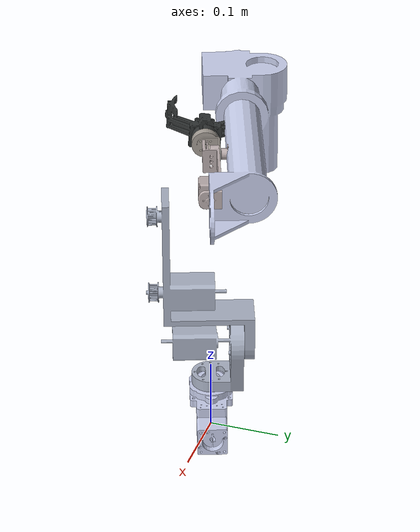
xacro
<?xml version="1.0"?>
<robot xmlns:xacro="http://www.ros.org/wiki/xacro" name="arm_description">

    <!--指定urdf位置 -->
    <xacro:include filename="$(find arm_description)/urdf/arm_description.urdf" />

    <!--对link进行gazebo的属性设置 -->
    <gazebo reference="link1">
        <material>Gazebo/Purple</material>
        <self_collide>false</self_collide>
        <gravity>false</gravity>
    </gazebo>
    <gazebo reference="link2">
        <material>Gazebo/Red</material>
        <gravity>false</gravity>
    </gazebo>
    <gazebo reference="link3">
        <material>Gazebo/Blue</material>
        <gravity>false</gravity>
    </gazebo>
    <gazebo reference="link4">
        <material>Gazebo/Green</material>
        <gravity>false</gravity>
    </gazebo>
    <gazebo reference="link5">
        <material>Gazebo/Yellow</material>
        <gravity>false</gravity>
    </gazebo>
    <gazebo reference="link6">
        <material>Gazebo/Orange</material>
        <gravity>false</gravity>
    </gazebo>

    <!--声明ros2_control-->
    <ros2_control name="GazeboSystem" type="system">
        <hardware>
            <plugin>gazebo_ros2_control/GazeboSystem</plugin>
        </hardware>
        <joint name="joint1">
            <command_interface name="position"/>
            <state_interface name="position">
                <param name="initial_value">0</param>
            </state_interface>
            <state_interface name="velocity"/>
        </joint>
        <joint name="joint2">
            <command_interface name="position"/>
            <state_interface name="position">
                <param name="initial_value">0</param>
            </state_interface>
            <state_interface name="velocity"/>
        </joint>
        <joint name="joint3">
            <command_interface name="position"/>
            <state_interface name="position">
                <param name="initial_value">0</param>
            </state_interface>
            <state_interface name="velocity"/>
        </joint>
        <joint name="joint4">
            <command_interface name="position"/>
            <state_interface name="position">
                <param name="initial_value">0</param>
            </state_interface>
            <state_interface name="velocity"/>
        </joint>
        <joint name="joint5">
            <command_interface name="position"/>
            <state_interface name="position">
                <param name="initial_value">0</param>
            </state_interface>
            <state_interface name="velocity"/>
        </joint>
        <joint name="joint6">
            <command_interface name="position"/>
            <state_interface name="position">
                <param name="initial_value">0</param>
            </state_interface>
            <state_interface name="velocity"/>
        </joint>
    </ros2_control>

    <!--加载ros2_control插件-->
    <gazebo>
        <plugin filename="libgazebo_ros2_control.so" name="gazebo_ros2_control">
            <parameters>$(find mybot)/config/ros2_controllers.yaml</parameters>
            <robot_param>robot_description</robot_param>
        </plugin>
    </gazebo>

</robot>

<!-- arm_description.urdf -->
<robot
  name="arm_description">
  <link
    name="base_link">
    <inertial>
      <origin
        xyz="0.0268167569184559 0.00988330927382925 0.0389985816010397"
        rpy="0 0 0" />
      <mass
        value="0.203444722785633" />
      <inertia
        ixx="0"
        ixy="0"
        ixz="0"
        iyy="0"
        iyz="0"
        izz="0" />
    </inertial>
    <visual>
      <origin
        xyz="0 0 0"
        rpy="0 0 0" />
      <geometry>
        <mesh filename="file://$(find arm_description)/meshes/base_link.STL" />
      </geometry>
      <material
        name="">
        <color
          rgba="0.792156862745098 0.819607843137255 0.933333333333333 1" />
      </material>
    </visual>
    <collision>
      <origin
        xyz="0 0 0"
        rpy="0 0 0" />
      <geometry>
        <mesh filename="file://$(find arm_description)/meshes/base_link.STL" />
      </geometry>
    </collision>
  </link>
  <link
    name="link1">
    <inertial>
      <origin
        xyz="-0.0051989766284948 0.014105545007175 0.094274975812668"
        rpy="0 0 0" />
      <mass
        value="0.368823355332405" />
      <inertia
        ixx="0"
        ixy="0"
        ixz="0"
        iyy="0"
        iyz="0"
        izz="0"/>
    </inertial>
    <visual>
      <origin
        xyz="0 0 0"
        rpy="0 0 0" />
      <geometry>
        <mesh filename="file://$(find arm_description)/meshes/link1.STL" />
      </geometry>
      <material
        name="">
        <color
          rgba="0.666666666666667 0.698039215686274 0.768627450980392 1" />
      </material>
    </visual>
    <collision>
      <origin
        xyz="0 0 0"
        rpy="0 0 0" />
      <geometry>
        <mesh filename="file://$(find arm_description)/meshes/link1.STL" />
      </geometry>
    </collision>
  </link>
  <joint
    name="joint1"
    type="revolute">
    <origin
      xyz="0 0 0.023"
      rpy="0 0 0" />
    <parent
      link="base_link" />
    <child
      link="link1" />
    <axis
      xyz="0 0 1" />
    <limit
      lower="-3.14"
      upper="3.14"
      effort="100"
      velocity="1" />
  </joint>
  <link
    name="link2">
    <inertial>
      <origin
        xyz="8.83460611810979E-08 -0.128012629710787 -0.0159296257706432"
        rpy="0 0 0" />
      <mass
        value="0.544852989449072" />
      <inertia
        ixx="0"
        ixy="0"
        ixz="0"
        iyy="0"
        iyz="0"
        izz="0" />
    </inertial>
    <visual>
      <origin
        xyz="0 0 0"
        rpy="0 0 0" />
      <geometry>
        <mesh filename="file://$(find arm_description)/meshes/link2.STL" />
      </geometry>
      <material
        name="">
        <color
          rgba="0.666666666666667 0.698039215686274 0.768627450980392 1" />
      </material>
    </visual>
    <collision>
      <origin
        xyz="0 0 0"
        rpy="0 0 0" />
      <geometry>
        <mesh filename="file://$(find arm_description)/meshes/link2.STL" />
      </geometry>
    </collision>
  </link>
  <joint
    name="joint2"
    type="revolute">
    <origin
      xyz="0 0 0.068"
      rpy="-1.5708 0 0.3531" />
    <parent
      link="link1" />
    <child
      link="link2" />
    <axis
      xyz="0 0 1" />
    <limit
      lower="-3.14"
      upper="3.14"
      effort="100"
      velocity="1" />
  </joint>
  <link
    name="link3">
    <inertial>
      <origin
        xyz="0.013240251863205 0.0139335419355381 -0.0112377194070576"
        rpy="0 0 0" />
      <mass
        value="0.0917004665842034" />
      <inertia
        ixx="0"
        ixy="0"
        ixz="0"
        iyy="0"
        iyz="0"
        izz="0" />
    </inertial>
    <visual>
      <origin
        xyz="0 0 0"
        rpy="0 0 0" />
      <geometry>
        <mesh filename="file://$(find arm_description)/meshes/link3.STL" />
      </geometry>
      <material
        name="">
        <color
          rgba="0.792156862745098 0.819607843137255 0.933333333333333 1" />
      </material>
    </visual>
    <collision>
      <origin
        xyz="0 0 0"
        rpy="0 0 0" />
      <geometry>
        <mesh filename="file://$(find arm_description)/meshes/link3.STL" />
      </geometry>
    </collision>
  </link>
  <joint
    name="joint3"
    type="revolute">
    <origin
      xyz="0 -0.2495 0"
      rpy="0 0 -3.1416" />
    <parent
      link="link2" />
    <child
      link="link3" />
    <axis
      xyz="0 0 1" />
    <limit
      lower="-3.14"
      upper="3.14"
      effort="100"
      velocity="1" />
  </joint>
  <link
    name="link4">
    <inertial>
      <origin
        xyz="-5.8714765495238E-05 0.0119880333787913 0.108725593527645"
        rpy="0 0 0" />
      <mass
        value="0.069176396943401" />
      <inertia
        ixx="0"
        ixy="0"
        ixz="0"
        iyy="0"
        iyz="0"
        izz="0" />
    </inertial>
    <visual>
      <origin
        xyz="0 0 0"
        rpy="0 0 0" />
      <geometry>
        <mesh filename="file://$(find arm_description)/meshes/link4.STL" />
      </geometry>
      <material
        name="">
        <color
          rgba="0.729411764705882 0.67843137254902 0.67843137254902 1" />
      </material>
    </visual>
    <collision>
      <origin
        xyz="0 0 0"
        rpy="0 0 0" />
      <geometry>
        <mesh filename="file://$(find arm_description)/meshes/link4.STL" />
      </geometry>
    </collision>
  </link>
  <joint
    name="joint4"
    type="revolute">
    <origin
      xyz="0 0 0"
      rpy="1.5708 0 1.5708" />
    <parent
      link="link3" />
    <child
      link="link4" />
    <axis
      xyz="0 0 -1" />
    <limit
      lower="-3.14"
      upper="3.14"
      effort="100"
      velocity="1" />
  </joint>
  <link
    name="link5">
    <inertial>
      <origin
        xyz="0.0229728172093318 -9.43689570931383E-16 -0.00391893505663949"
        rpy="0 0 0" />
      <mass
        value="0.023149699183495" />
      <inertia
        ixx="0"
        ixy="0"
        ixz="0"
        iyy="0"
        iyz="0"
        izz="0" />
    </inertial>
    <visual>
      <origin
        xyz="0 0 0"
        rpy="0 0 0" />
      <geometry>
        <mesh filename="file://$(find arm_description)/meshes/link5.STL" />
      </geometry>
      <material
        name="">
        <color
          rgba="0.647058823529412 0.619607843137255 0.588235294117647 1" />
      </material>
    </visual>
    <collision>
      <origin
        xyz="0 0 0"
        rpy="0 0 0" />
      <geometry>
        <mesh filename="file://$(find arm_description)/meshes/link5.STL" />
      </geometry>
    </collision>
  </link>
  <joint
    name="joint5"
    type="revolute">
    <origin
      xyz="0 0 0.175"
      rpy="1.5708 -1.5708 0" />
    <parent
      link="link4" />
    <child
      link="link5" />
    <axis
      xyz="0 0 -1" />
    <limit
      lower="-3.14"
      upper="3.14"
      effort="100"
      velocity="1" />
  </joint>
  <link
    name="link6">
    <inertial>
      <origin
        xyz="-0.00112146718000627 -0.000373286227536261 0.0738014768056536"
        rpy="0 0 0" />
      <mass
        value="0.0600964910877864" />
      <inertia
        ixx="0"
        ixy="0"
        ixz="0"
        iyy="0"
        iyz="0"
        izz="0" />
    </inertial>
    <visual>
      <origin
        xyz="0 0 0"
        rpy="0 0 0" />
      <geometry>
        <mesh filename="file://$(find arm_description)/meshes/link6.STL" />
      </geometry>
      <material
        name="">
        <color
          rgba="0.192156862745098 0.203921568627451 0.203921568627451 1" />
      </material>
    </visual>
    <collision>
      <origin
        xyz="0 0 0"
        rpy="0 0 0" />
      <geometry>
        <mesh filename="file://$(find arm_description)/meshes/link6.STL" />
      </geometry>
    </collision>
  </link>
  <joint
    name="joint6"
    type="revolute">
    <origin
      xyz="0 0 0.0005"
      rpy="1.5708 0 1.5708" />
    <parent
      link="link5" />
    <child
      link="link6" />
    <axis
      xyz="0 0 -1" />
    <limit
      lower="-3.14"
      upper="3.14"
      effort="100"
      velocity="1" />
  </joint>
</robot>
